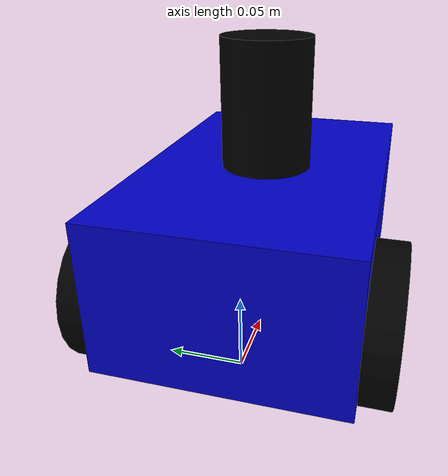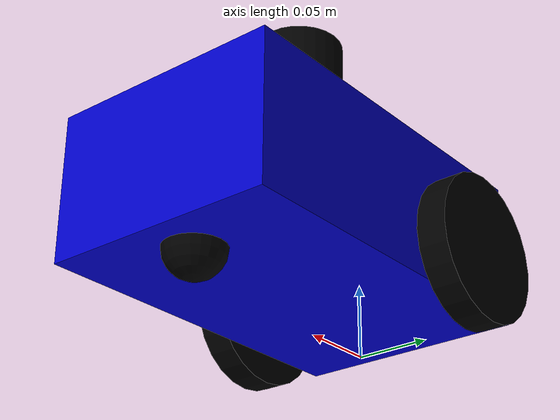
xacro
<?xml version="1.0"?>
<robot xmlns:xacro="http://www.ros.org/wiki/xacro" name="robot">

    <link name="base_footprint"/>

    <joint name="base_joint" type="fixed">
        <parent link="base_footprint" />
        <child link="base_link" />
        <origin xyz="0 0 0.05" rpy="0 0 0" />
    </joint>

    <link name="base_link">
        <visual>
            <origin xyz="0.07 0 0.02" rpy="0 0 0" />
            <geometry>
                <box size="0.25 0.16 0.1" />
            </geometry>
            <material name="blue">
                <color rgba="0 0 0.8 1"/>
            </material>
        </visual>
        <collision>
            <origin xyz="0.07 0 0.02" rpy="0 0 0" />
            <geometry>
                <box size="0.25 0.2 0.1" />
            </geometry>
        </collision>
    </link>

    <joint name="lidar" type="fixed">
        <parent link="base_link" />
        <child link="lidar_link"/>
        <origin xyz="0.065 0 0.17" rpy="0 0 0"/>
    </joint>

    <link name="lidar_link">
        <visual>
            <origin xyz="0 0 -0.06" rpy="0 0 0" />
            <geometry>
                <cylinder radius="0.03" length="0.09"/>
            </geometry>
            <material name="black">
                <color rgba="0 0 0 1"/>
            </material>
        </visual>
        <collision>
            <origin xyz="0 0 -0.06" rpy="0 0 0" />
            <geometry>
                <cylinder radius="0.03" length="0.09"/>
            </geometry>
        </collision>
    </link>

    <joint name="right_wheel_joint" type="continuous">
        <parent link="base_link" />
        <child link="right_wheel_link" />
        <origin xyz="0 0.09 0" rpy="1.5708 0 0" />
        <axis xyz="0 0 1" />
    </joint>

    <link name="right_wheel_link">
        <visual>
            <origin xyz="0 0 0" rpy="0 0 0" />
            <geometry>
                <cylinder radius="0.05" length="0.02" />
            </geometry>
            <material name="black">
                <color rgba="0 0 0 1"/>
            </material>
        </visual>
    </link>

    <joint name="left_wheel_joint" type="continuous">
        <parent link="base_link" />
        <child link="left_wheel_link" />
        <origin xyz="0 -0.09 0" rpy=" 1.5708 0 0" />
        <axis xyz="0 0 1" />
    </joint>

    <link name="left_wheel_link">
        <visual>
            <origin xyz="0 0 0" rpy=" 0 0 0" />
            <geometry>
                <cylinder radius="0.05" length="-0.02" />
            </geometry>
            <material name="black">
                <color rgba="0 0 0 1"/>
            </material>
        </visual>
    </link>

    <joint name="castor_wheel_joint" type="continuous">
        <parent link="base_link" />
        <child link="castor_wheel_link" />
        <origin xyz="0.16 0 -0.03" rpy="0 0 0" />
        <axis xyz="1 1 1" />
    </joint>

    <link name="castor_wheel_link">
        <visual>
            <origin xyz="0 0 0" rpy="0 0 0" />
            <geometry>
                <sphere radius="0.02" />
            </geometry>
            <material name="black">
                <color rgba="0 0 0 1"/>
            </material>
        </visual>
    </link>

    <link name="imu_link">
        <visual>
            <origin xyz="0 0 0" rpy="0 0 0" />
            <geometry>
                <box size="0.02 0.02 0.001" />
            </geometry>
            <material name="black">
                <color rgba="0 0 0 1"/>
            </material>
        </visual>
    </link>

    <joint name="imu_joint" type="fixed">
        <parent link="base_link"/>
        <child link="imu_link"/>
        <origin xyz="0.12 0.0 0.07" rpy="0 0 0"/>
    </joint>

</robot>
